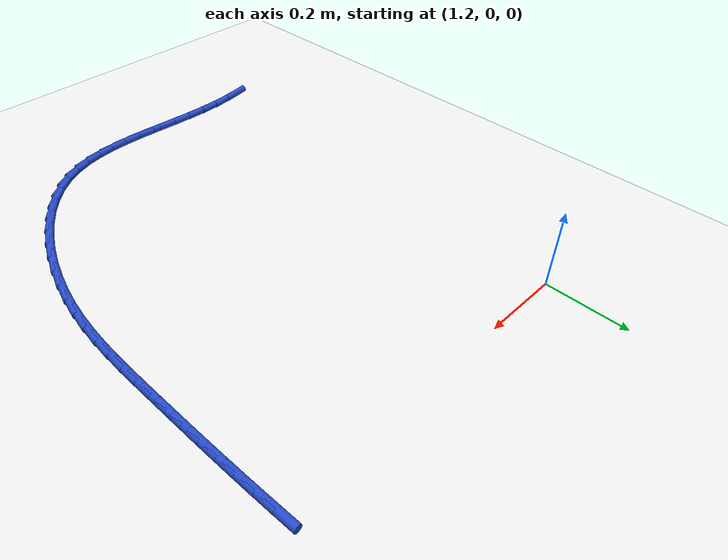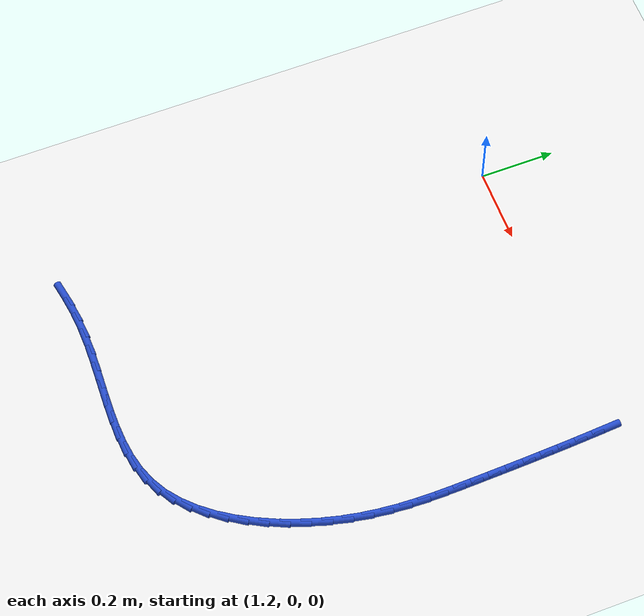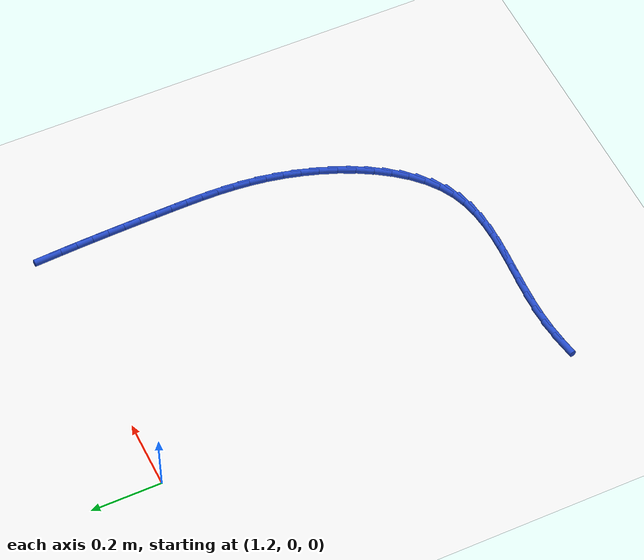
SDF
<sdf version="1.6">
 <world name="default">
  <model name="ground_plane">
   <static>1</static>
   <link name="link">
    <collision name="collision">
     <geometry><plane><normal>0 0 1</normal><size>100 100</size></plane></geometry>
     <surface><friction><ode><mu>100</mu><mu2>50</mu2></ode></friction></surface>
    </collision>
    <visual name="visual">
     <cast_shadows>0</cast_shadows>
     <geometry><plane><normal>0 0 1</normal><size>100 100</size></plane></geometry>
     <material>
      <script><uri>file://media/materials/scripts/gazebo.material</uri><name>Gazebo/WhiteGlow</name></script>
     </material>
    </visual>
   </link>
  </model>
  <model name="line">
   <link name="link_75">
    <pose>2.0039372733754774 -0.0025379369648886423 0.01 0 1.57 -1.5148040998862173</pose>
    <collision name="collision">
     <geometry><cylinder><radius>0.01</radius><length>0.08</length></cylinder></geometry>
    </collision>
    <visual name="visual">
     <material>
      <script><name>Gazebo/Blue</name><uri>file://media/materials/scripts/gazebo.material</uri></script>
     </material>
     <geometry><cylinder><radius>0.01</radius><length>0.08</length></cylinder></geometry>
    </visual>
   </link>
   <link name="link_76">
    <pose>2.006639976813479 -0.050756744374702525 0.01 0 1.57 -1.5216716885320811</pose>
    <collision name="collision">
     <geometry><cylinder><radius>0.01</radius><length>0.08</length></cylinder></geometry>
    </collision>
    <visual name="visual">
     <material>
      <script><name>Gazebo/Blue</name><uri>file://media/materials/scripts/gazebo.material</uri></script>
     </material>
     <geometry><cylinder><radius>0.01</radius><length>0.08</length></cylinder></geometry>
    </visual>
   </link>
   <link name="link_77">
    <pose>2.0090097731287733 -0.09895841678087205 0.01 0 1.57 -1.5278150121907677</pose>
    <collision name="collision">
     <geometry><cylinder><radius>0.01</radius><length>0.08</length></cylinder></geometry>
    </collision>
    <visual name="visual">
     <material>
      <script><name>Gazebo/Blue</name><uri>file://media/materials/scripts/gazebo.material</uri></script>
     </material>
     <geometry><cylinder><radius>0.01</radius><length>0.08</length></cylinder></geometry>
    </visual>
   </link>
   <link name="link_78">
    <pose>2.011080972142003 -0.1471170977189723 0.01 0 1.57 -1.533240323424917</pose>
    <collision name="collision">
     <geometry><cylinder><radius>0.01</radius><length>0.08</length></cylinder></geometry>
    </collision>
    <visual name="visual">
     <material>
      <script><name>Gazebo/Blue</name><uri>file://media/materials/scripts/gazebo.material</uri></script>
     </material>
     <geometry><cylinder><radius>0.01</radius><length>0.08</length></cylinder></geometry>
    </visual>
   </link>
   <link name="link_79">
    <pose>2.012887883673813 -0.1952069307245807 0.01 0 1.57 -1.537952018683708</pose>
    <collision name="collision">
     <geometry><cylinder><radius>0.01</radius><length>0.08</length></cylinder></geometry>
    </collision>
    <visual name="visual">
     <material>
      <script><name>Gazebo/Blue</name><uri>file://media/materials/scripts/gazebo.material</uri></script>
     </material>
     <geometry><cylinder><radius>0.01</radius><length>0.08</length></cylinder></geometry>
    </visual>
   </link>
   <link name="link_80">
    <pose>2.0144648175448454 -0.24320205933327166 0.01 0 1.57 -1.5419525581604234</pose>
    <collision name="collision">
     <geometry><cylinder><radius>0.01</radius><length>0.08</length></cylinder></geometry>
    </collision>
    <visual name="visual">
     <material>
      <script><name>Gazebo/Blue</name><uri>file://media/materials/scripts/gazebo.material</uri></script>
     </material>
     <geometry><cylinder><radius>0.01</radius><length>0.08</length></cylinder></geometry>
    </visual>
   </link>
   <link name="link_81">
    <pose>2.015846083575745 -0.29107662708062276 0.01 0 1.57 -1.545242383176188</pose>
    <collision name="collision">
     <geometry><cylinder><radius>0.01</radius><length>0.08</length></cylinder></geometry>
    </collision>
    <visual name="visual">
     <material>
      <script><name>Gazebo/Blue</name><uri>file://media/materials/scripts/gazebo.material</uri></script>
     </material>
     <geometry><cylinder><radius>0.01</radius><length>0.08</length></cylinder></geometry>
    </visual>
   </link>
   <link name="link_82">
    <pose>2.0170659915871547 -0.33880477750220894 0.01 0 1.57 -1.5478590985735519</pose>
    <collision name="collision">
     <geometry><cylinder><radius>0.01</radius><length>0.08</length></cylinder></geometry>
    </collision>
    <visual name="visual">
     <material>
      <script><name>Gazebo/Blue</name><uri>file://media/materials/scripts/gazebo.material</uri></script>
     </material>
     <geometry><cylinder><radius>0.01</radius><length>0.08</length></cylinder></geometry>
    </visual>
   </link>
   <link name="link_83">
    <pose>2.0181569991626818 -0.38636136219280176 0.01 0 1.57 -1.5534356649627135</pose>
    <collision name="collision">
     <geometry><cylinder><radius>0.01</radius><length>0.08</length></cylinder></geometry>
    </collision>
    <visual name="visual">
     <material>
      <script><name>Gazebo/Blue</name><uri>file://media/materials/scripts/gazebo.material</uri></script>
     </material>
     <geometry><cylinder><radius>0.01</radius><length>0.08</length></cylinder></geometry>
    </visual>
   </link>
   <link name="link_84">
    <pose>2.018980416406131 -0.4337866577141799 0.01 0 1.57 -1.5684783082275426</pose>
    <collision name="collision">
     <geometry><cylinder><radius>0.01</radius><length>0.08</length></cylinder></geometry>
    </collision>
    <visual name="visual">
     <material>
      <script><name>Gazebo/Blue</name><uri>file://media/materials/scripts/gazebo.material</uri></script>
     </material>
     <geometry><cylinder><radius>0.01</radius><length>0.08</length></cylinder></geometry>
    </visual>
   </link>
   <link name="link_85">
    <pose>2.0190904105136336 -0.4812383529009936 0.01 0 1.57 1.5481074718033572</pose>
    <collision name="collision">
     <geometry><cylinder><radius>0.01</radius><length>0.08</length></cylinder></geometry>
    </collision>
    <visual name="visual">
     <material>
      <script><name>Gazebo/Blue</name><uri>file://media/materials/scripts/gazebo.material</uri></script>
     </material>
     <geometry><cylinder><radius>0.01</radius><length>0.08</length></cylinder></geometry>
    </visual>
   </link>
   <link name="link_86">
    <pose>2.0180091460099665 -0.5288863703275909 0.01 0 1.57 1.513576738823057</pose>
    <collision name="collision">
     <geometry><cylinder><radius>0.01</radius><length>0.08</length></cylinder></geometry>
    </collision>
    <visual name="visual">
     <material>
      <script><name>Gazebo/Blue</name><uri>file://media/materials/scripts/gazebo.material</uri></script>
     </material>
     <geometry><cylinder><radius>0.01</radius><length>0.08</length></cylinder></geometry>
    </visual>
   </link>
   <link name="link_87">
    <pose>2.0152587874199086 -0.5769006325683183 0.01 0 1.57 1.4702662338100165</pose>
    <collision name="collision">
     <geometry><cylinder><radius>0.01</radius><length>0.08</length></cylinder></geometry>
    </collision>
    <visual name="visual">
     <material>
      <script><name>Gazebo/Blue</name><uri>file://media/materials/scripts/gazebo.material</uri></script>
     </material>
     <geometry><cylinder><radius>0.01</radius><length>0.08</length></cylinder></geometry>
    </visual>
   </link>
   <link name="link_88">
    <pose>2.010361499268236 -0.6254510621975218 0.01 0 1.57 1.4192552847347435</pose>
    <collision name="collision">
     <geometry><cylinder><radius>0.01</radius><length>0.08</length></cylinder></geometry>
    </collision>
    <visual name="visual">
     <material>
      <script><name>Gazebo/Blue</name><uri>file://media/materials/scripts/gazebo.material</uri></script>
     </material>
     <geometry><cylinder><radius>0.01</radius><length>0.08</length></cylinder></geometry>
    </visual>
   </link>
   <link name="link_89">
    <pose>2.002839446079727 -0.6747075817895498 0.01 0 1.57 1.3630081378965122</pose>
    <collision name="collision">
     <geometry><cylinder><radius>0.01</radius><length>0.08</length></cylinder></geometry>
    </collision>
    <visual name="visual">
     <material>
      <script><name>Gazebo/Blue</name><uri>file://media/materials/scripts/gazebo.material</uri></script>
     </material>
     <geometry><cylinder><radius>0.01</radius><length>0.08</length></cylinder></geometry>
    </visual>
   </link>
   <link name="link_90">
    <pose>1.992298409714755 -0.7247050893057938 0.01 0 1.57 1.3062193755034597</pose>
    <collision name="collision">
     <geometry><cylinder><radius>0.01</radius><length>0.08</length></cylinder></geometry>
    </collision>
    <visual name="visual">
     <material>
      <script><name>Gazebo/Blue</name><uri>file://media/materials/scripts/gazebo.material</uri></script>
     </material>
     <geometry><cylinder><radius>0.01</radius><length>0.08</length></cylinder></geometry>
    </visual>
   </link>
   <link name="link_91">
    <pose>1.9786966714893364 -0.7749092693713754 0.01 0 1.57 1.248398626302868</pose>
    <collision name="collision">
     <geometry><cylinder><radius>0.01</radius><length>0.08</length></cylinder></geometry>
    </collision>
    <visual name="visual">
     <material>
      <script><name>Gazebo/Blue</name><uri>file://media/materials/scripts/gazebo.material</uri></script>
     </material>
     <geometry><cylinder><radius>0.01</radius><length>0.08</length></cylinder></geometry>
    </visual>
   </link>
   <link name="link_92">
    <pose>1.9620853854677012 -0.8246358364312856 0.01 0 1.57 1.1877397564066219</pose>
    <collision name="collision">
     <geometry><cylinder><radius>0.01</radius><length>0.08</length></cylinder></geometry>
    </collision>
    <visual name="visual">
     <material>
      <script><name>Gazebo/Blue</name><uri>file://media/materials/scripts/gazebo.material</uri></script>
     </material>
     <geometry><cylinder><radius>0.01</radius><length>0.08</length></cylinder></geometry>
    </visual>
   </link>
   <link name="link_93">
    <pose>1.9425157061864422 -0.8732005041677466 0.01 0 1.57 1.122371310166709</pose>
    <collision name="collision">
     <geometry><cylinder><radius>0.01</radius><length>0.08</length></cylinder></geometry>
    </collision>
    <visual name="visual">
     <material>
      <script><name>Gazebo/Blue</name><uri>file://media/materials/scripts/gazebo.material</uri></script>
     </material>
     <geometry><cylinder><radius>0.01</radius><length>0.08</length></cylinder></geometry>
    </visual>
   </link>
   <link name="link_94">
    <pose>1.92003878818215 -0.9199189862629843 0.01 0 1.57 1.0502403084598333</pose>
    <collision name="collision">
     <geometry><cylinder><radius>0.01</radius><length>0.08</length></cylinder></geometry>
    </collision>
    <visual name="visual">
     <material>
      <script><name>Gazebo/Blue</name><uri>file://media/materials/scripts/gazebo.material</uri></script>
     </material>
     <geometry><cylinder><radius>0.01</radius><length>0.08</length></cylinder></geometry>
    </visual>
   </link>
   <link name="link_95">
    <pose>1.8947057859914174 -0.9641069963992217 0.01 0 1.57 0.9690258871997324</pose>
    <collision name="collision">
     <geometry><cylinder><radius>0.01</radius><length>0.08</length></cylinder></geometry>
    </collision>
    <visual name="visual">
     <material>
      <script><name>Gazebo/Blue</name><uri>file://media/materials/scripts/gazebo.material</uri></script>
     </material>
     <geometry><cylinder><radius>0.01</radius><length>0.08</length></cylinder></geometry>
    </visual>
   </link>
   <link name="link_96">
    <pose>1.8665678541508353 -1.0050802482586823 0.01 0 1.57 0.8761132227738812</pose>
    <collision name="collision">
     <geometry><cylinder><radius>0.01</radius><length>0.08</length></cylinder></geometry>
    </collision>
    <visual name="visual">
     <material>
      <script><name>Gazebo/Blue</name><uri>file://media/materials/scripts/gazebo.material</uri></script>
     </material>
     <geometry><cylinder><radius>0.01</radius><length>0.08</length></cylinder></geometry>
    </visual>
   </link>
   <link name="link_97">
    <pose>1.8356761471969942 -1.042154455523591 0.01 0 1.57 0.7687023134693816</pose>
    <collision name="collision">
     <geometry><cylinder><radius>0.01</radius><length>0.08</length></cylinder></geometry>
    </collision>
    <visual name="visual">
     <material>
      <script><name>Gazebo/Blue</name><uri>file://media/materials/scripts/gazebo.material</uri></script>
     </material>
     <geometry><cylinder><radius>0.01</radius><length>0.08</length></cylinder></geometry>
    </visual>
   </link>
   <link name="link_98">
    <pose>1.8020818196664887 -1.0746453318761715 0.01 0 1.57 0.6441878669076837</pose>
    <collision name="collision">
     <geometry><cylinder><radius>0.01</radius><length>0.08</length></cylinder></geometry>
    </collision>
    <visual name="visual">
     <material>
      <script><name>Gazebo/Blue</name><uri>file://media/materials/scripts/gazebo.material</uri></script>
     </material>
     <geometry><cylinder><radius>0.01</radius><length>0.08</length></cylinder></geometry>
    </visual>
   </link>
   <link name="link_99">
    <pose>1.7658360260959087 -1.1018685909986488 0.01 0 1.57 0.5010510992021165</pose>
    <collision name="collision">
     <geometry><cylinder><radius>0.01</radius><length>0.08</length></cylinder></geometry>
    </collision>
    <visual name="visual">
     <material>
      <script><name>Gazebo/Blue</name><uri>file://media/materials/scripts/gazebo.material</uri></script>
     </material>
     <geometry><cylinder><radius>0.01</radius><length>0.08</length></cylinder></geometry>
    </visual>
   </link>
   <link name="link_100">
    <pose>1.7269903613035653 -1.1231431212817433 0.01 0 1.57 0.3509838393017071</pose>
    <collision name="collision">
     <geometry><cylinder><radius>0.01</radius><length>0.08</length></cylinder></geometry>
    </collision>
    <visual name="visual">
     <material>
      <script><name>Gazebo/Blue</name><uri>file://media/materials/scripts/gazebo.material</uri></script>
     </material>
     <geometry><cylinder><radius>0.01</radius><length>0.08</length></cylinder></geometry>
    </visual>
   </link>
   <link name="link_101">
    <pose>1.6856639219565943 -1.1382745419610887 0.01 0 1.57 0.2213522282248822</pose>
    <collision name="collision">
     <geometry><cylinder><radius>0.01</radius><length>0.08</length></cylinder></geometry>
    </collision>
    <visual name="visual">
     <material>
      <script><name>Gazebo/Blue</name><uri>file://media/materials/scripts/gazebo.material</uri></script>
     </material>
     <geometry><cylinder><radius>0.01</radius><length>0.08</length></cylinder></geometry>
    </visual>
   </link>
   <link name="link_102">
    <pose>1.6421153524040286 -1.148074698950507 0.01 0 1.57 0.11825773979229288</pose>
    <collision name="collision">
     <geometry><cylinder><radius>0.01</radius><length>0.08</length></cylinder></geometry>
    </collision>
    <visual name="visual">
     <material>
      <script><name>Gazebo/Blue</name><uri>file://media/materials/scripts/gazebo.material</uri></script>
     </material>
     <geometry><cylinder><radius>0.01</radius><length>0.08</length></cylinder></geometry>
    </visual>
   </link>
   <link name="link_103">
    <pose>1.5966205758482124 -1.1534800295789827 0.01 0 1.57 0.04125589705068684</pose>
    <collision name="collision">
     <geometry><cylinder><radius>0.01</radius><length>0.08</length></cylinder></geometry>
    </collision>
    <visual name="visual">
     <material>
      <script><name>Gazebo/Blue</name><uri>file://media/materials/scripts/gazebo.material</uri></script>
     </material>
     <geometry><cylinder><radius>0.01</radius><length>0.08</length></cylinder></geometry>
    </visual>
   </link>
   <link name="link_104">
    <pose>1.549455515491491 -1.1554269711755005 0.01 0 1.57 -0.011840817328597718</pose>
    <collision name="collision">
     <geometry><cylinder><radius>0.01</radius><length>0.08</length></cylinder></geometry>
    </collision>
    <visual name="visual">
     <material>
      <script><name>Gazebo/Blue</name><uri>file://media/materials/scripts/gazebo.material</uri></script>
     </material>
     <geometry><cylinder><radius>0.01</radius><length>0.08</length></cylinder></geometry>
    </visual>
   </link>
   <link name="link_105">
    <pose>1.5008960945362069 -1.1548519610690466 0.01 0 1.57 -0.043463303937440946</pose>
    <collision name="collision">
     <geometry><cylinder><radius>0.01</radius><length>0.08</length></cylinder></geometry>
    </collision>
    <visual name="visual">
     <material>
      <script><name>Gazebo/Blue</name><uri>file://media/materials/scripts/gazebo.material</uri></script>
     </material>
     <geometry><cylinder><radius>0.01</radius><length>0.08</length></cylinder></geometry>
    </visual>
   </link>
   <link name="link_106">
    <pose>1.451218236184706 -1.1526914365886054 0.01 0 1.57 -0.055556010480316935</pose>
    <collision name="collision">
     <geometry><cylinder><radius>0.01</radius><length>0.08</length></cylinder></geometry>
    </collision>
    <visual name="visual">
     <material>
      <script><name>Gazebo/Blue</name><uri>file://media/materials/scripts/gazebo.material</uri></script>
     </material>
     <geometry><cylinder><radius>0.01</radius><length>0.08</length></cylinder></geometry>
    </visual>
   </link>
   <link name="link_107">
    <pose>1.4006978636393308 -1.1498818350631619 0.01 0 1.57 -0.0493314673290947</pose>
    <collision name="collision">
     <geometry><cylinder><radius>0.01</radius><length>0.08</length></cylinder></geometry>
    </collision>
    <visual name="visual">
     <material>
      <script><name>Gazebo/Blue</name><uri>file://media/materials/scripts/gazebo.material</uri></script>
     </material>
     <geometry><cylinder><radius>0.01</radius><length>0.08</length></cylinder></geometry>
    </visual>
   </link>
   <link name="link_108">
    <pose>1.3496109001024263 -1.1473595938217012 0.01 0 1.57 -0.025267169028798647</pose>
    <collision name="collision">
     <geometry><cylinder><radius>0.01</radius><length>0.08</length></cylinder></geometry>
    </collision>
    <visual name="visual">
     <material>
      <script><name>Gazebo/Blue</name><uri>file://media/materials/scripts/gazebo.material</uri></script>
     </material>
     <geometry><cylinder><radius>0.01</radius><length>0.08</length></cylinder></geometry>
    </visual>
   </link>
   <link name="link_109">
    <pose>1.298233268776338 -1.1460611501932088 0.01 0 1.57 0.01676728376115329</pose>
    <collision name="collision">
     <geometry><cylinder><radius>0.01</radius><length>0.08</length></cylinder></geometry>
    </collision>
    <visual name="visual">
     <material>
      <script><name>Gazebo/Blue</name><uri>file://media/materials/scripts/gazebo.material</uri></script>
     </material>
     <geometry><cylinder><radius>0.01</radius><length>0.08</length></cylinder></geometry>
    </visual>
   </link>
   <link name="link_110">
    <pose>1.2468408928634078 -1.1469229415066695 0.01 0 1.57 0.07678344505726462</pose>
    <collision name="collision">
     <geometry><cylinder><radius>0.01</radius><length>0.08</length></cylinder></geometry>
    </collision>
    <visual name="visual">
     <material>
      <script><name>Gazebo/Blue</name><uri>file://media/materials/scripts/gazebo.material</uri></script>
     </material>
     <geometry><cylinder><radius>0.01</radius><length>0.08</length></cylinder></geometry>
    </visual>
   </link>
   <link name="link_111">
    <pose>1.1957081683337905 -1.1508568222818285 0.01 0 1.57 0.13757683988799707</pose>
    <collision name="collision">
     <geometry><cylinder><radius>0.01</radius><length>0.08</length></cylinder></geometry>
    </collision>
    <visual name="visual">
     <material>
      <script><name>Gazebo/Blue</name><uri>file://media/materials/scripts/gazebo.material</uri></script>
     </material>
     <geometry><cylinder><radius>0.01</radius><length>0.08</length></cylinder></geometry>
    </visual>
   </link>
   <link name="link_112">
    <pose>1.1450532929689905 -1.1578700633350543 0.01 0 1.57 0.17708791007103186</pose>
    <collision name="collision">
     <geometry><cylinder><radius>0.01</radius><length>0.08</length></cylinder></geometry>
    </collision>
    <visual name="visual">
     <material>
      <script><name>Gazebo/Blue</name><uri>file://media/materials/scripts/gazebo.material</uri></script>
     </material>
     <geometry><cylinder><radius>0.01</radius><length>0.08</length></cylinder></geometry>
    </visual>
   </link>
  </model>
 </world>
</sdf>
